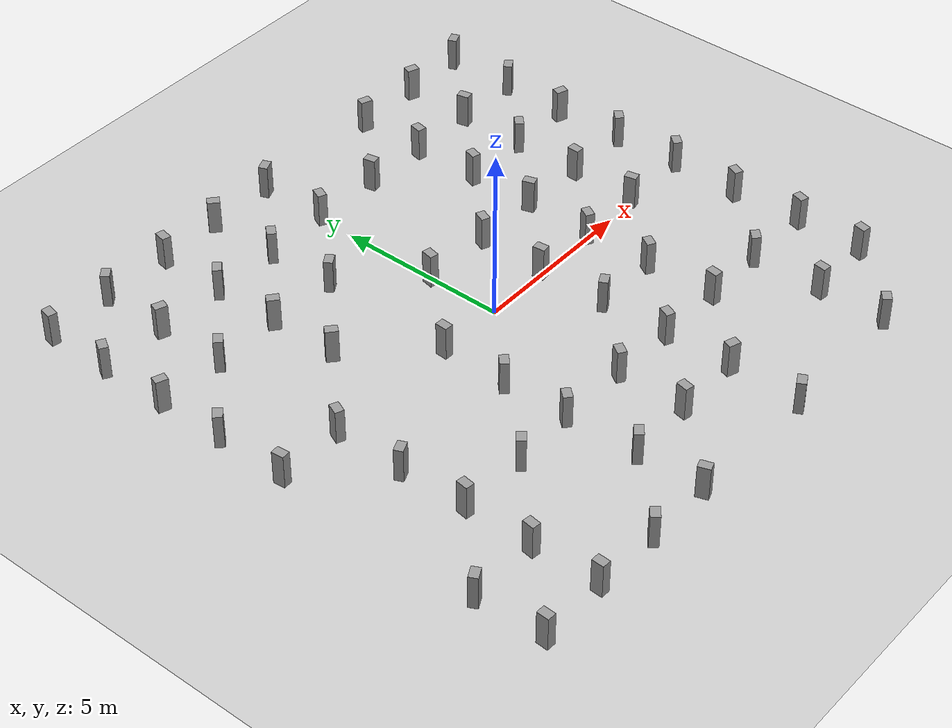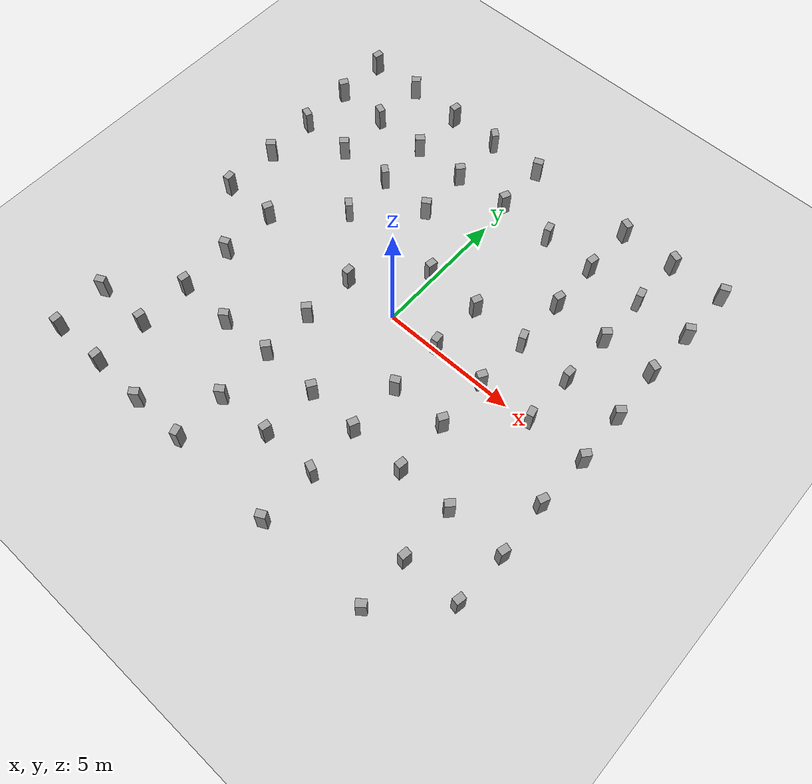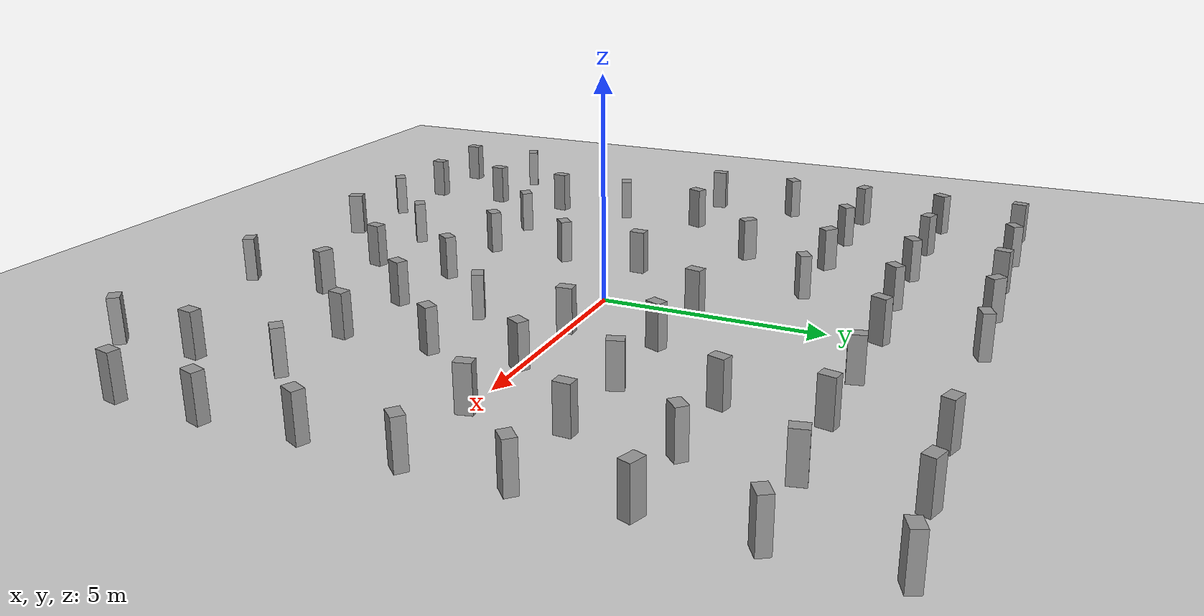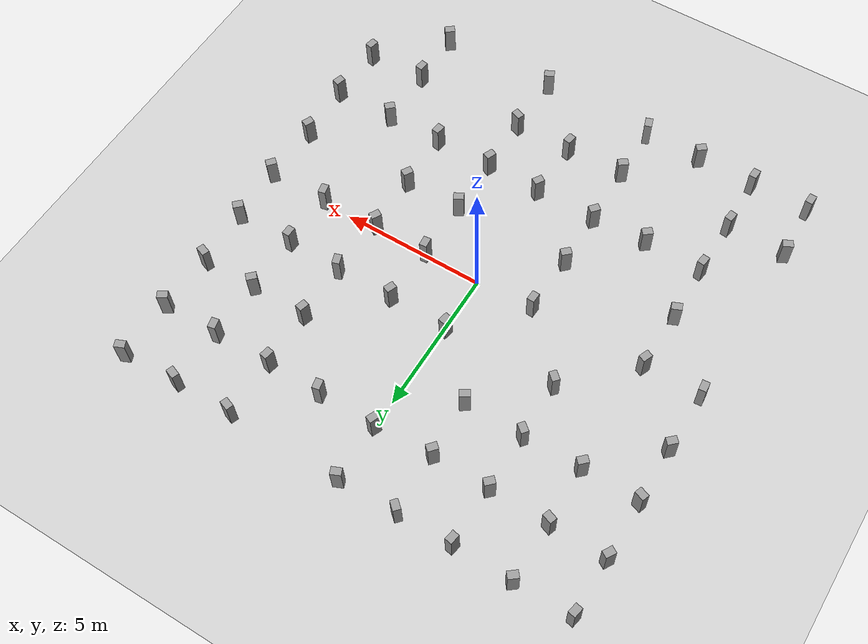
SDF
<sdf version="1.6">
 <world name="default">
  <light name="sun" type="directional">
   <pose>0 0 10 0 -0 0</pose>
   <diffuse>0.8 0.8 0.8 1</diffuse>
   <specular>0.1 0.1 0.1 1</specular>
   <attenuation>
    <range>1000</range>
    <constant>0.9</constant>
    <linear>0.01</linear>
    <quadratic>0.001</quadratic>
   </attenuation>
   <direction>-0.5 0.5 -1</direction>
  </light>
  <model name="ground_plane">
   <static>1</static>
   <link name="link">
    <collision name="collision">
     <geometry><plane><normal>0 0 1</normal><size>100 100</size></plane></geometry>
     <surface><friction><ode><mu>100</mu><mu2>50</mu2></ode></friction></surface>
    </collision>
    <visual name="visual">
     <cast_shadows>0</cast_shadows>
     <geometry><plane><normal>0 0 1</normal><size>100 100</size></plane></geometry>
     <material>
      <script><uri>file://media/materials/scripts/gazebo.material</uri><name>Gazebo/Grey</name></script>
     </material>
    </visual>
   </link>
  </model>
  <gravity>0 0 -9.8</gravity>
  <magnetic_field>6e-06 2.3e-05 -4.2e-05</magnetic_field>
  <atmosphere type="adiabatic"/>
  <physics name="default_physics" default="0" type="ode">
   <max_step_size>0.001</max_step_size>
   <real_time_factor>1</real_time_factor>
   <real_time_update_rate>1000</real_time_update_rate>
  </physics>
  <scene><ambient>0.4 0.4 0.4 1</ambient><background>0.7 0.7 0.7 1</background><shadows>1</shadows></scene>
  <spherical_coordinates>
   <surface_model>EARTH_WGS84</surface_model>
   <latitude_deg>0</latitude_deg>
   <longitude_deg>0</longitude_deg>
   <elevation>0</elevation>
   <heading_deg>0</heading_deg>
  </spherical_coordinates>
  <model name="unit_box_0_clone">
   <pose>-2.05591 -0.03587 0.499999 2e-06 2e-06 -1.61442</pose>
   <link name="link">
    <inertial>
     <mass>1</mass>
     <inertia>
      <ixx>0.166667</ixx>
      <ixy>0</ixy>
      <ixz>0</ixz>
      <iyy>0.166667</iyy>
      <iyz>0</iyz>
      <izz>0.166667</izz>
     </inertia>
    </inertial>
    <collision name="collision"><geometry><box><size>0.350929 0.254556 1</size></box></geometry></collision>
    <visual name="visual">
     <geometry><box><size>0.350929 0.254556 1</size></box></geometry>
     <material>
      <script><name>Gazebo/Grey</name><uri>file://media/materials/scripts/gazebo.material</uri></script>
     </material>
    </visual>
   </link>
  </model>
  <model name="unit_box_0_clone_0">
   <pose>-2.12172 -2.02535 0.499999 1e-06 -3e-06 0.766403</pose>
   <link name="link">
    <inertial>
     <mass>1</mass>
     <inertia>
      <ixx>0.166667</ixx>
      <ixy>0</ixy>
      <ixz>0</ixz>
      <iyy>0.166667</iyy>
      <iyz>0</iyz>
      <izz>0.166667</izz>
     </inertia>
    </inertial>
    <collision name="collision"><geometry><box><size>0.350929 0.254556 1</size></box></geometry></collision>
    <visual name="visual">
     <geometry><box><size>0.350929 0.254556 1</size></box></geometry>
     <material>
      <script><name>Gazebo/Grey</name><uri>file://media/materials/scripts/gazebo.material</uri></script>
     </material>
    </visual>
   </link>
  </model>
  <model name="unit_box_0_clone_2">
   <pose>1.9498 -2.04742 0.499999 3e-06 2e-06 0.477371</pose>
   <link name="link">
    <inertial>
     <mass>1</mass>
     <inertia>
      <ixx>0.166667</ixx>
      <ixy>0</ixy>
      <ixz>0</ixz>
      <iyy>0.166667</iyy>
      <iyz>0</iyz>
      <izz>0.166667</izz>
     </inertia>
    </inertial>
    <collision name="collision"><geometry><box><size>0.350929 0.254556 1</size></box></geometry></collision>
    <visual name="visual">
     <geometry><box><size>0.350929 0.254556 1</size></box></geometry>
     <material>
      <script><name>Gazebo/Grey</name><uri>file://media/materials/scripts/gazebo.material</uri></script>
     </material>
    </visual>
   </link>
  </model>
  <model name="unit_box_0_clone_3">
   <pose>1.94354 0.021052 0.5 1e-06 2e-06 -1.47998</pose>
   <link name="link">
    <inertial>
     <mass>1</mass>
     <inertia>
      <ixx>0.166667</ixx>
      <ixy>0</ixy>
      <ixz>0</ixz>
      <iyy>0.166667</iyy>
      <iyz>0</iyz>
      <izz>0.166667</izz>
     </inertia>
    </inertial>
    <collision name="collision"><geometry><box><size>0.350929 0.254556 1</size></box></geometry></collision>
    <visual name="visual">
     <geometry><box><size>0.350929 0.254556 1</size></box></geometry>
     <material>
      <script><name>Gazebo/Grey</name><uri>file://media/materials/scripts/gazebo.material</uri></script>
     </material>
    </visual>
   </link>
  </model>
  <model name="unit_box_0_clone_4">
   <pose>1.98703 2.02419 0.499999 -3e-06 2e-06 1.17593</pose>
   <link name="link">
    <inertial>
     <mass>1</mass>
     <inertia>
      <ixx>0.166667</ixx>
      <ixy>0</ixy>
      <ixz>0</ixz>
      <iyy>0.166667</iyy>
      <iyz>0</iyz>
      <izz>0.166667</izz>
     </inertia>
    </inertial>
    <collision name="collision"><geometry><box><size>0.350929 0.254556 1</size></box></geometry></collision>
    <visual name="visual">
     <geometry><box><size>0.350929 0.254556 1</size></box></geometry>
     <material>
      <script><name>Gazebo/Grey</name><uri>file://media/materials/scripts/gazebo.material</uri></script>
     </material>
    </visual>
   </link>
  </model>
  <model name="unit_box_0_clone_5">
   <pose>-0.107164 2.07934 0.499999 -1e-06 3e-06 1.37163</pose>
   <link name="link">
    <inertial>
     <mass>1</mass>
     <inertia>
      <ixx>0.166667</ixx>
      <ixy>0</ixy>
      <ixz>0</ixz>
      <iyy>0.166667</iyy>
      <iyz>0</iyz>
      <izz>0.166667</izz>
     </inertia>
    </inertial>
    <collision name="collision"><geometry><box><size>0.350929 0.254556 1</size></box></geometry></collision>
    <visual name="visual">
     <geometry><box><size>0.350929 0.254556 1</size></box></geometry>
     <material>
      <script><name>Gazebo/Grey</name><uri>file://media/materials/scripts/gazebo.material</uri></script>
     </material>
    </visual>
   </link>
  </model>
  <model name="unit_box_0_clone_0_clone_0">
   <pose>3.90799 -0.017551 0.499999 -2e-06 3e-06 1.06267</pose>
   <link name="link">
    <inertial>
     <mass>1</mass>
     <inertia>
      <ixx>0.166667</ixx>
      <ixy>0</ixy>
      <ixz>0</ixz>
      <iyy>0.166667</iyy>
      <iyz>0</iyz>
      <izz>0.166667</izz>
     </inertia>
    </inertial>
    <collision name="collision"><geometry><box><size>0.350929 0.254556 1</size></box></geometry></collision>
    <visual name="visual">
     <geometry><box><size>0.350929 0.254556 1</size></box></geometry>
     <material>
      <script><name>Gazebo/Grey</name><uri>file://media/materials/scripts/gazebo.material</uri></script>
     </material>
    </visual>
   </link>
  </model>
  <model name="unit_box_0_clone_0_clone_1">
   <pose>3.9473 -2.00835 0.5 1e-06 -1e-06 1.0336</pose>
   <link name="link">
    <inertial>
     <mass>1</mass>
     <inertia>
      <ixx>0.166667</ixx>
      <ixy>0</ixy>
      <ixz>0</ixz>
      <iyy>0.166667</iyy>
      <iyz>0</iyz>
      <izz>0.166667</izz>
     </inertia>
    </inertial>
    <collision name="collision"><geometry><box><size>0.350929 0.254556 1</size></box></geometry></collision>
    <visual name="visual">
     <geometry><box><size>0.350929 0.254556 1</size></box></geometry>
     <material>
      <script><name>Gazebo/Grey</name><uri>file://media/materials/scripts/gazebo.material</uri></script>
     </material>
    </visual>
   </link>
  </model>
  <model name="unit_box_0_clone_0_clone_clone_0">
   <pose>-3.99445 2.03442 0.5 1e-06 -2e-06 -0.719649</pose>
   <link name="link">
    <inertial>
     <mass>1</mass>
     <inertia>
      <ixx>0.166667</ixx>
      <ixy>0</ixy>
      <ixz>0</ixz>
      <iyy>0.166667</iyy>
      <iyz>0</iyz>
      <izz>0.166667</izz>
     </inertia>
    </inertial>
    <collision name="collision"><geometry><box><size>0.350929 0.254556 1</size></box></geometry></collision>
    <visual name="visual">
     <geometry><box><size>0.350929 0.254556 1</size></box></geometry>
     <material>
      <script><name>Gazebo/Grey</name><uri>file://media/materials/scripts/gazebo.material</uri></script>
     </material>
    </visual>
   </link>
  </model>
  <model name="unit_box_0_clone_0_clone_clone_1">
   <pose>4.00978 2.0365 0.499999 -2e-06 -2e-06 -1.24413</pose>
   <link name="link">
    <inertial>
     <mass>1</mass>
     <inertia>
      <ixx>0.166667</ixx>
      <ixy>0</ixy>
      <ixz>0</ixz>
      <iyy>0.166667</iyy>
      <iyz>0</iyz>
      <izz>0.166667</izz>
     </inertia>
    </inertial>
    <collision name="collision"><geometry><box><size>0.350929 0.254556 1</size></box></geometry></collision>
    <visual name="visual">
     <geometry><box><size>0.350929 0.254556 1</size></box></geometry>
     <material>
      <script><name>Gazebo/Grey</name><uri>file://media/materials/scripts/gazebo.material</uri></script>
     </material>
    </visual>
   </link>
  </model>
  <model name="unit_box_0_clone_0_clone_clone_2">
   <pose>-4.04009 4.00348 0.499999 -1e-06 3e-06 -0.672931</pose>
   <link name="link">
    <inertial>
     <mass>1</mass>
     <inertia>
      <ixx>0.166667</ixx>
      <ixy>0</ixy>
      <ixz>0</ixz>
      <iyy>0.166667</iyy>
      <iyz>0</iyz>
      <izz>0.166667</izz>
     </inertia>
    </inertial>
    <collision name="collision"><geometry><box><size>0.350929 0.254556 1</size></box></geometry></collision>
    <visual name="visual">
     <geometry><box><size>0.350929 0.254556 1</size></box></geometry>
     <material>
      <script><name>Gazebo/Grey</name><uri>file://media/materials/scripts/gazebo.material</uri></script>
     </material>
    </visual>
   </link>
  </model>
  <model name="unit_box_0_clone_0_clone_clone_3">
   <pose>-1.96683 3.94969 0.5 1e-06 2e-06 0.554753</pose>
   <link name="link">
    <inertial>
     <mass>1</mass>
     <inertia>
      <ixx>0.166667</ixx>
      <ixy>0</ixy>
      <ixz>0</ixz>
      <iyy>0.166667</iyy>
      <iyz>0</iyz>
      <izz>0.166667</izz>
     </inertia>
    </inertial>
    <collision name="collision"><geometry><box><size>0.350929 0.254556 1</size></box></geometry></collision>
    <visual name="visual">
     <geometry><box><size>0.350929 0.254556 1</size></box></geometry>
     <material>
      <script><name>Gazebo/Grey</name><uri>file://media/materials/scripts/gazebo.material</uri></script>
     </material>
    </visual>
   </link>
  </model>
  <model name="unit_box_0_clone_0_clone_clone_6">
   <pose>3.97808 4.00798 0.499999 3e-06 -2e-06 1.2887</pose>
   <link name="link">
    <inertial>
     <mass>1</mass>
     <inertia>
      <ixx>0.166667</ixx>
      <ixy>0</ixy>
      <ixz>0</ixz>
      <iyy>0.166667</iyy>
      <iyz>0</iyz>
      <izz>0.166667</izz>
     </inertia>
    </inertial>
    <collision name="collision"><geometry><box><size>0.350929 0.254556 1</size></box></geometry></collision>
    <visual name="visual">
     <geometry><box><size>0.350929 0.254556 1</size></box></geometry>
     <material>
      <script><name>Gazebo/Grey</name><uri>file://media/materials/scripts/gazebo.material</uri></script>
     </material>
    </visual>
   </link>
  </model>
  <model name="unit_box_0_clone_0_clone_clone_7">
   <pose>-3.99587 -4.06663 0.5 -2e-06 -1e-06 0.674019</pose>
   <link name="link">
    <inertial>
     <mass>1</mass>
     <inertia>
      <ixx>0.166667</ixx>
      <ixy>0</ixy>
      <ixz>0</ixz>
      <iyy>0.166667</iyy>
      <iyz>0</iyz>
      <izz>0.166667</izz>
     </inertia>
    </inertial>
    <collision name="collision"><geometry><box><size>0.350929 0.254556 1</size></box></geometry></collision>
    <visual name="visual">
     <geometry><box><size>0.350929 0.254556 1</size></box></geometry>
     <material>
      <script><name>Gazebo/Grey</name><uri>file://media/materials/scripts/gazebo.material</uri></script>
     </material>
    </visual>
   </link>
  </model>
  <model name="unit_box_0_clone_0_clone_clone_8">
   <pose>-2.09802 -3.96334 0.5 -1e-06 2e-06 0.856121</pose>
   <link name="link">
    <inertial>
     <mass>1</mass>
     <inertia>
      <ixx>0.166667</ixx>
      <ixy>0</ixy>
      <ixz>0</ixz>
      <iyy>0.166667</iyy>
      <iyz>0</iyz>
      <izz>0.166667</izz>
     </inertia>
    </inertial>
    <collision name="collision"><geometry><box><size>0.350929 0.254556 1</size></box></geometry></collision>
    <visual name="visual">
     <geometry><box><size>0.350929 0.254556 1</size></box></geometry>
     <material>
      <script><name>Gazebo/Grey</name><uri>file://media/materials/scripts/gazebo.material</uri></script>
     </material>
    </visual>
   </link>
  </model>
  <model name="unit_box_0_clone_0_clone_clone_9">
   <pose>0.032902 -3.98118 0.499999 2e-06 -3e-06 0.998529</pose>
   <link name="link">
    <inertial>
     <mass>1</mass>
     <inertia>
      <ixx>0.166667</ixx>
      <ixy>0</ixy>
      <ixz>0</ixz>
      <iyy>0.166667</iyy>
      <iyz>0</iyz>
      <izz>0.166667</izz>
     </inertia>
    </inertial>
    <collision name="collision"><geometry><box><size>0.350929 0.254556 1</size></box></geometry></collision>
    <visual name="visual">
     <geometry><box><size>0.350929 0.254556 1</size></box></geometry>
     <material>
      <script><name>Gazebo/Grey</name><uri>file://media/materials/scripts/gazebo.material</uri></script>
     </material>
    </visual>
   </link>
  </model>
  <model name="unit_box_0_clone_0_clone_clone_10">
   <pose>1.95385 -4.04506 0.5 -1e-06 1e-06 1.16011</pose>
   <link name="link">
    <inertial>
     <mass>1</mass>
     <inertia>
      <ixx>0.166667</ixx>
      <ixy>0</ixy>
      <ixz>0</ixz>
      <iyy>0.166667</iyy>
      <iyz>0</iyz>
      <izz>0.166667</izz>
     </inertia>
    </inertial>
    <collision name="collision"><geometry><box><size>0.350929 0.254556 1</size></box></geometry></collision>
    <visual name="visual">
     <geometry><box><size>0.350929 0.254556 1</size></box></geometry>
     <material>
      <script><name>Gazebo/Grey</name><uri>file://media/materials/scripts/gazebo.material</uri></script>
     </material>
    </visual>
   </link>
  </model>
  <model name="unit_box_0_clone_0_clone_clone_11">
   <pose>4.00189 -4.04974 0.499999 -1e-06 3e-06 1.42903</pose>
   <link name="link">
    <inertial>
     <mass>1</mass>
     <inertia>
      <ixx>0.166667</ixx>
      <ixy>0</ixy>
      <ixz>0</ixz>
      <iyy>0.166667</iyy>
      <iyz>0</iyz>
      <izz>0.166667</izz>
     </inertia>
    </inertial>
    <collision name="collision"><geometry><box><size>0.350929 0.254556 1</size></box></geometry></collision>
    <visual name="visual">
     <geometry><box><size>0.350929 0.254556 1</size></box></geometry>
     <material>
      <script><name>Gazebo/Grey</name><uri>file://media/materials/scripts/gazebo.material</uri></script>
     </material>
    </visual>
   </link>
  </model>
  <model name="unit_box_0_clone_0_clone_clone_13">
   <pose>-2.02858 -6.08392 0.499999 3e-06 2e-06 0.65401</pose>
   <link name="link">
    <inertial>
     <mass>1</mass>
     <inertia>
      <ixx>0.166667</ixx>
      <ixy>0</ixy>
      <ixz>0</ixz>
      <iyy>0.166667</iyy>
      <iyz>0</iyz>
      <izz>0.166667</izz>
     </inertia>
    </inertial>
    <collision name="collision"><geometry><box><size>0.350929 0.254556 1</size></box></geometry></collision>
    <visual name="visual">
     <geometry><box><size>0.350929 0.254556 1</size></box></geometry>
     <material>
      <script><name>Gazebo/Grey</name><uri>file://media/materials/scripts/gazebo.material</uri></script>
     </material>
    </visual>
   </link>
  </model>
  <model name="unit_box_0_clone_0_clone_clone_14">
   <pose>-0.025517 -6.0059 0.499999 -1e-06 3e-06 1.37177</pose>
   <link name="link">
    <inertial>
     <mass>1</mass>
     <inertia>
      <ixx>0.166667</ixx>
      <ixy>0</ixy>
      <ixz>0</ixz>
      <iyy>0.166667</iyy>
      <iyz>0</iyz>
      <izz>0.166667</izz>
     </inertia>
    </inertial>
    <collision name="collision"><geometry><box><size>0.350929 0.254556 1</size></box></geometry></collision>
    <visual name="visual">
     <geometry><box><size>0.350929 0.254556 1</size></box></geometry>
     <material>
      <script><name>Gazebo/Grey</name><uri>file://media/materials/scripts/gazebo.material</uri></script>
     </material>
    </visual>
   </link>
  </model>
  <model name="unit_box_0_clone_0_clone_clone_15">
   <pose>2 -6 0.5 -1e-06 2e-06 -0.344023</pose>
   <link name="link">
    <inertial>
     <mass>1</mass>
     <inertia>
      <ixx>0.166667</ixx>
      <ixy>0</ixy>
      <ixz>0</ixz>
      <iyy>0.166667</iyy>
      <iyz>0</iyz>
      <izz>0.166667</izz>
     </inertia>
    </inertial>
    <collision name="collision"><geometry><box><size>0.350929 0.254556 1</size></box></geometry></collision>
    <visual name="visual">
     <geometry><box><size>0.350929 0.254556 1</size></box></geometry>
     <material>
      <script><name>Gazebo/Grey</name><uri>file://media/materials/scripts/gazebo.material</uri></script>
     </material>
    </visual>
   </link>
  </model>
  <model name="unit_box_0_clone_0_clone_clone_11_clone">
   <pose>5.97269 -6.08417 0.5 1e-06 -2e-06 1.42899</pose>
   <link name="link">
    <inertial>
     <mass>1</mass>
     <inertia>
      <ixx>0.166667</ixx>
      <ixy>0</ixy>
      <ixz>0</ixz>
      <iyy>0.166667</iyy>
      <iyz>0</iyz>
      <izz>0.166667</izz>
     </inertia>
    </inertial>
    <collision name="collision"><geometry><box><size>0.350929 0.254556 1</size></box></geometry></collision>
    <visual name="visual">
     <geometry><box><size>0.350929 0.254556 1</size></box></geometry>
     <material>
      <script><name>Gazebo/Grey</name><uri>file://media/materials/scripts/gazebo.material</uri></script>
     </material>
    </visual>
   </link>
  </model>
  <model name="unit_box_0_clone_0_clone_clone_11_clone_0">
   <pose>-6.05663 -6.01449 0.499999 1e-06 -3e-06 1.42906</pose>
   <link name="link">
    <inertial>
     <mass>1</mass>
     <inertia>
      <ixx>0.166667</ixx>
      <ixy>0</ixy>
      <ixz>0</ixz>
      <iyy>0.166667</iyy>
      <iyz>0</iyz>
      <izz>0.166667</izz>
     </inertia>
    </inertial>
    <collision name="collision"><geometry><box><size>0.350929 0.254556 1</size></box></geometry></collision>
    <visual name="visual">
     <geometry><box><size>0.350929 0.254556 1</size></box></geometry>
     <material>
      <script><name>Gazebo/Grey</name><uri>file://media/materials/scripts/gazebo.material</uri></script>
     </material>
    </visual>
   </link>
  </model>
  <model name="unit_box_0_clone_6">
   <pose>5.9535 -4.01117 0.499999 2e-06 -2e-06 0.772519</pose>
   <link name="link">
    <inertial>
     <mass>1</mass>
     <inertia>
      <ixx>0.166667</ixx>
      <ixy>0</ixy>
      <ixz>0</ixz>
      <iyy>0.166667</iyy>
      <iyz>0</iyz>
      <izz>0.166667</izz>
     </inertia>
    </inertial>
    <collision name="collision"><geometry><box><size>0.350929 0.254556 1</size></box></geometry></collision>
    <visual name="visual">
     <geometry><box><size>0.350929 0.254556 1</size></box></geometry>
     <material>
      <script><name>Gazebo/Grey</name><uri>file://media/materials/scripts/gazebo.material</uri></script>
     </material>
    </visual>
   </link>
  </model>
  <model name="unit_box_0_clone_1_clone">
   <pose>5.93099 0.022737 0.5 2e-06 1e-06 -1.35808</pose>
   <link name="link">
    <inertial>
     <mass>1</mass>
     <inertia>
      <ixx>0.166667</ixx>
      <ixy>0</ixy>
      <ixz>0</ixz>
      <iyy>0.166667</iyy>
      <iyz>0</iyz>
      <izz>0.166667</izz>
     </inertia>
    </inertial>
    <collision name="collision"><geometry><box><size>0.350929 0.254556 1</size></box></geometry></collision>
    <visual name="visual">
     <geometry><box><size>0.350929 0.254556 1</size></box></geometry>
     <material>
      <script><name>Gazebo/Grey</name><uri>file://media/materials/scripts/gazebo.material</uri></script>
     </material>
    </visual>
   </link>
  </model>
  <model name="unit_box_0_clone_clone">
   <pose>5.95328 1.96844 0.499999 -2e-06 2e-06 -1.61412</pose>
   <link name="link">
    <inertial>
     <mass>1</mass>
     <inertia>
      <ixx>0.166667</ixx>
      <ixy>0</ixy>
      <ixz>0</ixz>
      <iyy>0.166667</iyy>
      <iyz>0</iyz>
      <izz>0.166667</izz>
     </inertia>
    </inertial>
    <collision name="collision"><geometry><box><size>0.350929 0.254556 1</size></box></geometry></collision>
    <visual name="visual">
     <geometry><box><size>0.350929 0.254556 1</size></box></geometry>
     <material>
      <script><name>Gazebo/Grey</name><uri>file://media/materials/scripts/gazebo.material</uri></script>
     </material>
    </visual>
   </link>
  </model>
  <model name="unit_box_0_clone_7">
   <pose>5.97323 3.98432 0.499999 -1e-06 -3e-06 0.772547</pose>
   <link name="link">
    <inertial>
     <mass>1</mass>
     <inertia>
      <ixx>0.166667</ixx>
      <ixy>0</ixy>
      <ixz>0</ixz>
      <iyy>0.166667</iyy>
      <iyz>0</iyz>
      <izz>0.166667</izz>
     </inertia>
    </inertial>
    <collision name="collision"><geometry><box><size>0.350929 0.254556 1</size></box></geometry></collision>
    <visual name="visual">
     <geometry><box><size>0.350929 0.254556 1</size></box></geometry>
     <material>
      <script><name>Gazebo/Grey</name><uri>file://media/materials/scripts/gazebo.material</uri></script>
     </material>
    </visual>
   </link>
  </model>
  <model name="unit_box_0_clone_1_clone_0">
   <pose>5.97038 5.96817 0.499999 1e-06 3e-06 -1.35802</pose>
   <link name="link">
    <inertial>
     <mass>1</mass>
     <inertia>
      <ixx>0.166667</ixx>
      <ixy>0</ixy>
      <ixz>0</ixz>
      <iyy>0.166667</iyy>
      <iyz>0</iyz>
      <izz>0.166667</izz>
     </inertia>
    </inertial>
    <collision name="collision"><geometry><box><size>0.350929 0.254556 1</size></box></geometry></collision>
    <visual name="visual">
     <geometry><box><size>0.350929 0.254556 1</size></box></geometry>
     <material>
      <script><name>Gazebo/Grey</name><uri>file://media/materials/scripts/gazebo.material</uri></script>
     </material>
    </visual>
   </link>
  </model>
  <model name="unit_box_0_clone_5_clone">
   <pose>3.93752 5.94743 0.499999 2e-06 -2e-06 1.37155</pose>
   <link name="link">
    <inertial>
     <mass>1</mass>
     <inertia>
      <ixx>0.166667</ixx>
      <ixy>0</ixy>
      <ixz>0</ixz>
      <iyy>0.166667</iyy>
      <iyz>0</iyz>
      <izz>0.166667</izz>
     </inertia>
    </inertial>
    <collision name="collision"><geometry><box><size>0.350929 0.254556 1</size></box></geometry></collision>
    <visual name="visual">
     <geometry><box><size>0.350929 0.254556 1</size></box></geometry>
     <material>
      <script><name>Gazebo/Grey</name><uri>file://media/materials/scripts/gazebo.material</uri></script>
     </material>
    </visual>
   </link>
  </model>
  <model name="unit_box_0_clone_1_clone_1">
   <pose>2 6 0.499999 2e-06 3e-06 -1.35811</pose>
   <link name="link">
    <inertial>
     <mass>1</mass>
     <inertia>
      <ixx>0.166667</ixx>
      <ixy>0</ixy>
      <ixz>0</ixz>
      <iyy>0.166667</iyy>
      <iyz>0</iyz>
      <izz>0.166667</izz>
     </inertia>
    </inertial>
    <collision name="collision"><geometry><box><size>0.350929 0.254556 1</size></box></geometry></collision>
    <visual name="visual">
     <geometry><box><size>0.350929 0.254556 1</size></box></geometry>
     <material>
      <script><name>Gazebo/Grey</name><uri>file://media/materials/scripts/gazebo.material</uri></script>
     </material>
    </visual>
   </link>
  </model>
  <model name="unit_box_0_clone_0_clone_clone_10_clone">
   <pose>-0.034355 6.04421 0.5 -1e-06 2e-06 1.16011</pose>
   <link name="link">
    <inertial>
     <mass>1</mass>
     <inertia>
      <ixx>0.166667</ixx>
      <ixy>0</ixy>
      <ixz>0</ixz>
      <iyy>0.166667</iyy>
      <iyz>0</iyz>
      <izz>0.166667</izz>
     </inertia>
    </inertial>
    <collision name="collision"><geometry><box><size>0.350929 0.254556 1</size></box></geometry></collision>
    <visual name="visual">
     <geometry><box><size>0.350929 0.254556 1</size></box></geometry>
     <material>
      <script><name>Gazebo/Grey</name><uri>file://media/materials/scripts/gazebo.material</uri></script>
     </material>
    </visual>
   </link>
  </model>
  <model name="unit_box_0_clone_0_clone_clone_8_clone_0">
   <pose>-2.0601 5.93381 0.499999 3e-06 -2e-06 0.856152</pose>
   <link name="link">
    <inertial>
     <mass>1</mass>
     <inertia>
      <ixx>0.166667</ixx>
      <ixy>0</ixy>
      <ixz>0</ixz>
      <iyy>0.166667</iyy>
      <iyz>0</iyz>
      <izz>0.166667</izz>
     </inertia>
    </inertial>
    <collision name="collision"><geometry><box><size>0.350929 0.254556 1</size></box></geometry></collision>
    <visual name="visual">
     <geometry><box><size>0.350929 0.254556 1</size></box></geometry>
     <material>
      <script><name>Gazebo/Grey</name><uri>file://media/materials/scripts/gazebo.material</uri></script>
     </material>
    </visual>
   </link>
  </model>
  <model name="unit_box_0_clone_0_clone_2">
   <pose>-4.0507 5.96912 0.5 0 -1e-06 0.766404</pose>
   <link name="link">
    <inertial>
     <mass>1</mass>
     <inertia>
      <ixx>0.166667</ixx>
      <ixy>0</ixy>
      <ixz>0</ixz>
      <iyy>0.166667</iyy>
      <iyz>0</iyz>
      <izz>0.166667</izz>
     </inertia>
    </inertial>
    <collision name="collision"><geometry><box><size>0.350929 0.254556 1</size></box></geometry></collision>
    <visual name="visual">
     <geometry><box><size>0.350929 0.254556 1</size></box></geometry>
     <material>
      <script><name>Gazebo/Grey</name><uri>file://media/materials/scripts/gazebo.material</uri></script>
     </material>
    </visual>
   </link>
  </model>
  <model name="unit_box_0_clone_0_clone_clone_15_clone">
   <pose>-6.09579 6.00418 0.499999 -1e-06 3e-06 -0.343954</pose>
   <link name="link">
    <inertial>
     <mass>1</mass>
     <inertia>
      <ixx>0.166667</ixx>
      <ixy>0</ixy>
      <ixz>0</ixz>
      <iyy>0.166667</iyy>
      <iyz>0</iyz>
      <izz>0.166667</izz>
     </inertia>
    </inertial>
    <collision name="collision"><geometry><box><size>0.350929 0.254556 1</size></box></geometry></collision>
    <visual name="visual">
     <geometry><box><size>0.350929 0.254556 1</size></box></geometry>
     <material>
      <script><name>Gazebo/Grey</name><uri>file://media/materials/scripts/gazebo.material</uri></script>
     </material>
    </visual>
   </link>
  </model>
  <model name="unit_box_0_clone_8">
   <pose>-6.05766 3.97861 0.5 -0 2e-06 0.772544</pose>
   <link name="link">
    <inertial>
     <mass>1</mass>
     <inertia>
      <ixx>0.166667</ixx>
      <ixy>0</ixy>
      <ixz>0</ixz>
      <iyy>0.166667</iyy>
      <iyz>0</iyz>
      <izz>0.166667</izz>
     </inertia>
    </inertial>
    <collision name="collision"><geometry><box><size>0.350929 0.254556 1</size></box></geometry></collision>
    <visual name="visual">
     <geometry><box><size>0.350929 0.254556 1</size></box></geometry>
     <material>
      <script><name>Gazebo/Grey</name><uri>file://media/materials/scripts/gazebo.material</uri></script>
     </material>
    </visual>
   </link>
  </model>
  <model name="unit_box_0_clone_4_clone">
   <pose>-6.05266 -0.012391 0.499999 -2e-06 2e-06 1.17593</pose>
   <link name="link">
    <inertial>
     <mass>1</mass>
     <inertia>
      <ixx>0.166667</ixx>
      <ixy>0</ixy>
      <ixz>0</ixz>
      <iyy>0.166667</iyy>
      <iyz>0</iyz>
      <izz>0.166667</izz>
     </inertia>
    </inertial>
    <collision name="collision"><geometry><box><size>0.350929 0.254556 1</size></box></geometry></collision>
    <visual name="visual">
     <geometry><box><size>0.350929 0.254556 1</size></box></geometry>
     <material>
      <script><name>Gazebo/Grey</name><uri>file://media/materials/scripts/gazebo.material</uri></script>
     </material>
    </visual>
   </link>
  </model>
  <model name="unit_box_0_clone_0_clone_clone_5_clone">
   <pose>-6.08131 -2.07249 0.5 -1e-06 -2e-06 0.402056</pose>
   <link name="link">
    <inertial>
     <mass>1</mass>
     <inertia>
      <ixx>0.166667</ixx>
      <ixy>0</ixy>
      <ixz>0</ixz>
      <iyy>0.166667</iyy>
      <iyz>0</iyz>
      <izz>0.166667</izz>
     </inertia>
    </inertial>
    <collision name="collision"><geometry><box><size>0.350929 0.254556 1</size></box></geometry></collision>
    <visual name="visual">
     <geometry><box><size>0.350929 0.254556 1</size></box></geometry>
     <material>
      <script><name>Gazebo/Grey</name><uri>file://media/materials/scripts/gazebo.material</uri></script>
     </material>
    </visual>
   </link>
  </model>
  <model name="unit_box_0_clone_0_clone_clone_11_clone_1">
   <pose>-6.03872 -4.03197 0.5 1e-06 -1e-06 1.42917</pose>
   <link name="link">
    <inertial>
     <mass>1</mass>
     <inertia>
      <ixx>0.166667</ixx>
      <ixy>0</ixy>
      <ixz>0</ixz>
      <iyy>0.166667</iyy>
      <iyz>0</iyz>
      <izz>0.166667</izz>
     </inertia>
    </inertial>
    <collision name="collision"><geometry><box><size>0.350929 0.254556 1</size></box></geometry></collision>
    <visual name="visual">
     <geometry><box><size>0.350929 0.254556 1</size></box></geometry>
     <material>
      <script><name>Gazebo/Grey</name><uri>file://media/materials/scripts/gazebo.material</uri></script>
     </material>
    </visual>
   </link>
  </model>
  <model name="unit_box_0_clone_clone_0">
   <pose>-8.02031 -7.97952 0.5 0 0 -1.61444</pose>
   <link name="link">
    <inertial>
     <mass>1</mass>
     <inertia>
      <ixx>0.166667</ixx>
      <ixy>0</ixy>
      <ixz>0</ixz>
      <iyy>0.166667</iyy>
      <iyz>0</iyz>
      <izz>0.166667</izz>
     </inertia>
    </inertial>
    <collision name="collision"><geometry><box><size>0.350929 0.254556 1</size></box></geometry></collision>
    <visual name="visual">
     <geometry><box><size>0.350929 0.254556 1</size></box></geometry>
     <material>
      <script><name>Gazebo/Grey</name><uri>file://media/materials/scripts/gazebo.material</uri></script>
     </material>
    </visual>
   </link>
  </model>
  <model name="unit_box_0_clone_2_clone">
   <pose>-8.0886 -6.0066 0.5 -2e-06 -1e-06 0.477424</pose>
   <link name="link">
    <inertial>
     <mass>1</mass>
     <inertia>
      <ixx>0.166667</ixx>
      <ixy>0</ixy>
      <ixz>0</ixz>
      <iyy>0.166667</iyy>
      <iyz>0</iyz>
      <izz>0.166667</izz>
     </inertia>
    </inertial>
    <collision name="collision"><geometry><box><size>0.350929 0.254556 1</size></box></geometry></collision>
    <visual name="visual">
     <geometry><box><size>0.350929 0.254556 1</size></box></geometry>
     <material>
      <script><name>Gazebo/Grey</name><uri>file://media/materials/scripts/gazebo.material</uri></script>
     </material>
    </visual>
   </link>
  </model>
  <model name="unit_box_0_clone_3_clone">
   <pose>-8.04135 -0.027247 0.499999 -1e-06 -3e-06 -1.48021</pose>
   <link name="link">
    <inertial>
     <mass>1</mass>
     <inertia>
      <ixx>0.166667</ixx>
      <ixy>0</ixy>
      <ixz>0</ixz>
      <iyy>0.166667</iyy>
      <iyz>0</iyz>
      <izz>0.166667</izz>
     </inertia>
    </inertial>
    <collision name="collision"><geometry><box><size>0.350929 0.254556 1</size></box></geometry></collision>
    <visual name="visual">
     <geometry><box><size>0.350929 0.254556 1</size></box></geometry>
     <material>
      <script><name>Gazebo/Grey</name><uri>file://media/materials/scripts/gazebo.material</uri></script>
     </material>
    </visual>
   </link>
  </model>
  <model name="unit_box_0_clone_0_clone_3">
   <pose>-8.01258 2.0706 0.499999 1e-06 -3e-06 0.766472</pose>
   <link name="link">
    <inertial>
     <mass>1</mass>
     <inertia>
      <ixx>0.166667</ixx>
      <ixy>0</ixy>
      <ixz>0</ixz>
      <iyy>0.166667</iyy>
      <iyz>0</iyz>
      <izz>0.166667</izz>
     </inertia>
    </inertial>
    <collision name="collision"><geometry><box><size>0.350929 0.254556 1</size></box></geometry></collision>
    <visual name="visual">
     <geometry><box><size>0.350929 0.254556 1</size></box></geometry>
     <material>
      <script><name>Gazebo/Grey</name><uri>file://media/materials/scripts/gazebo.material</uri></script>
     </material>
    </visual>
   </link>
  </model>
  <model name="unit_box_0_clone_0_clone_clone_17">
   <pose>-8.02954 4.01791 0.499999 3e-06 -2e-06 -0.344084</pose>
   <link name="link">
    <inertial>
     <mass>1</mass>
     <inertia>
      <ixx>0.166667</ixx>
      <ixy>0</ixy>
      <ixz>0</ixz>
      <iyy>0.166667</iyy>
      <iyz>0</iyz>
      <izz>0.166667</izz>
     </inertia>
    </inertial>
    <collision name="collision"><geometry><box><size>0.350929 0.254556 1</size></box></geometry></collision>
    <visual name="visual">
     <geometry><box><size>0.350929 0.254556 1</size></box></geometry>
     <material>
      <script><name>Gazebo/Grey</name><uri>file://media/materials/scripts/gazebo.material</uri></script>
     </material>
    </visual>
   </link>
  </model>
  <model name="unit_box_0_clone_0_clone_1_clone">
   <pose>-8.04903 6.0384 0.499999 -2e-06 2e-06 1.03366</pose>
   <link name="link">
    <inertial>
     <mass>1</mass>
     <inertia>
      <ixx>0.166667</ixx>
      <ixy>0</ixy>
      <ixz>0</ixz>
      <iyy>0.166667</iyy>
      <iyz>0</iyz>
      <izz>0.166667</izz>
     </inertia>
    </inertial>
    <collision name="collision"><geometry><box><size>0.350929 0.254556 1</size></box></geometry></collision>
    <visual name="visual">
     <geometry><box><size>0.350929 0.254556 1</size></box></geometry>
     <material>
      <script><name>Gazebo/Grey</name><uri>file://media/materials/scripts/gazebo.material</uri></script>
     </material>
    </visual>
   </link>
  </model>
  <model name="unit_box_0_clone_0_clone_clone_14_clone">
   <pose>-8.04004 7.98435 0.499999 -3e-06 2e-06 1.3718</pose>
   <link name="link">
    <inertial>
     <mass>1</mass>
     <inertia>
      <ixx>0.166667</ixx>
      <ixy>0</ixy>
      <ixz>0</ixz>
      <iyy>0.166667</iyy>
      <iyz>0</iyz>
      <izz>0.166667</izz>
     </inertia>
    </inertial>
    <collision name="collision"><geometry><box><size>0.350929 0.254556 1</size></box></geometry></collision>
    <visual name="visual">
     <geometry><box><size>0.350929 0.254556 1</size></box></geometry>
     <material>
      <script><name>Gazebo/Grey</name><uri>file://media/materials/scripts/gazebo.material</uri></script>
     </material>
    </visual>
   </link>
  </model>
  <model name="unit_box_0_clone_0_clone_clone_7_clone">
   <pose>-6.05556 8.01606 0.499999 1e-06 3e-06 0.673998</pose>
   <link name="link">
    <inertial>
     <mass>1</mass>
     <inertia>
      <ixx>0.166667</ixx>
      <ixy>0</ixy>
      <ixz>0</ixz>
      <iyy>0.166667</iyy>
      <iyz>0</iyz>
      <izz>0.166667</izz>
     </inertia>
    </inertial>
    <collision name="collision"><geometry><box><size>0.350929 0.254556 1</size></box></geometry></collision>
    <visual name="visual">
     <geometry><box><size>0.350929 0.254556 1</size></box></geometry>
     <material>
      <script><name>Gazebo/Grey</name><uri>file://media/materials/scripts/gazebo.material</uri></script>
     </material>
    </visual>
   </link>
  </model>
  <model name="unit_box_0_clone_5_clone_0">
   <pose>-4.0227 7.97562 0.5 -2e-06 1e-06 1.37152</pose>
   <link name="link">
    <inertial>
     <mass>1</mass>
     <inertia>
      <ixx>0.166667</ixx>
      <ixy>0</ixy>
      <ixz>0</ixz>
      <iyy>0.166667</iyy>
      <iyz>0</iyz>
      <izz>0.166667</izz>
     </inertia>
    </inertial>
    <collision name="collision"><geometry><box><size>0.350929 0.254556 1</size></box></geometry></collision>
    <visual name="visual">
     <geometry><box><size>0.350929 0.254556 1</size></box></geometry>
     <material>
      <script><name>Gazebo/Grey</name><uri>file://media/materials/scripts/gazebo.material</uri></script>
     </material>
    </visual>
   </link>
  </model>
  <model name="unit_box_0_clone_0_clone_clone_0_clone">
   <pose>-2.1188 8.00665 0.499999 1e-06 -3e-06 -0.719574</pose>
   <link name="link">
    <inertial>
     <mass>1</mass>
     <inertia>
      <ixx>0.166667</ixx>
      <ixy>0</ixy>
      <ixz>0</ixz>
      <iyy>0.166667</iyy>
      <iyz>0</iyz>
      <izz>0.166667</izz>
     </inertia>
    </inertial>
    <collision name="collision"><geometry><box><size>0.350929 0.254556 1</size></box></geometry></collision>
    <visual name="visual">
     <geometry><box><size>0.350929 0.254556 1</size></box></geometry>
     <material>
      <script><name>Gazebo/Grey</name><uri>file://media/materials/scripts/gazebo.material</uri></script>
     </material>
    </visual>
   </link>
  </model>
  <model name="unit_box_0_clone_0_clone_clone_5_clone_clone">
   <pose>-0.07356 8.03968 0.5 1e-06 2e-06 0.402099</pose>
   <link name="link">
    <inertial>
     <mass>1</mass>
     <inertia>
      <ixx>0.166667</ixx>
      <ixy>0</ixy>
      <ixz>0</ixz>
      <iyy>0.166667</iyy>
      <iyz>0</iyz>
      <izz>0.166667</izz>
     </inertia>
    </inertial>
    <collision name="collision"><geometry><box><size>0.350929 0.254556 1</size></box></geometry></collision>
    <visual name="visual">
     <geometry><box><size>0.350929 0.254556 1</size></box></geometry>
     <material>
      <script><name>Gazebo/Grey</name><uri>file://media/materials/scripts/gazebo.material</uri></script>
     </material>
    </visual>
   </link>
  </model>
  <model name="unit_box_0_clone_0_clone_clone_18">
   <pose>3.95488 7.96357 0.499999 2e-06 -2e-06 -0.344029</pose>
   <link name="link">
    <inertial>
     <mass>1</mass>
     <inertia>
      <ixx>0.166667</ixx>
      <ixy>0</ixy>
      <ixz>0</ixz>
      <iyy>0.166667</iyy>
      <iyz>0</iyz>
      <izz>0.166667</izz>
     </inertia>
    </inertial>
    <collision name="collision"><geometry><box><size>0.350929 0.254556 1</size></box></geometry></collision>
    <visual name="visual">
     <geometry><box><size>0.350929 0.254556 1</size></box></geometry>
     <material>
      <script><name>Gazebo/Grey</name><uri>file://media/materials/scripts/gazebo.material</uri></script>
     </material>
    </visual>
   </link>
  </model>
  <model name="unit_box_0_clone_0_clone_clone_4_clone_0">
   <pose>5.99782 7.97549 0.5 -2e-06 1e-06 -0.343986</pose>
   <link name="link">
    <inertial>
     <mass>1</mass>
     <inertia>
      <ixx>0.166667</ixx>
      <ixy>0</ixy>
      <ixz>0</ixz>
      <iyy>0.166667</iyy>
      <iyz>0</iyz>
      <izz>0.166667</izz>
     </inertia>
    </inertial>
    <collision name="collision"><geometry><box><size>0.350929 0.254556 1</size></box></geometry></collision>
    <visual name="visual">
     <geometry><box><size>0.350929 0.254556 1</size></box></geometry>
     <material>
      <script><name>Gazebo/Grey</name><uri>file://media/materials/scripts/gazebo.material</uri></script>
     </material>
    </visual>
   </link>
  </model>
  <model name="unit_box_0_clone_0_clone_clone_5_clone_clone_0">
   <pose>7.98714 8.04657 0.5 1e-06 2e-06 0.401961</pose>
   <link name="link">
    <inertial>
     <mass>1</mass>
     <inertia>
      <ixx>0.166667</ixx>
      <ixy>0</ixy>
      <ixz>0</ixz>
      <iyy>0.166667</iyy>
      <iyz>0</iyz>
      <izz>0.166667</izz>
     </inertia>
    </inertial>
    <collision name="collision"><geometry><box><size>0.350929 0.254556 1</size></box></geometry></collision>
    <visual name="visual">
     <geometry><box><size>0.350929 0.254556 1</size></box></geometry>
     <material>
      <script><name>Gazebo/Grey</name><uri>file://media/materials/scripts/gazebo.material</uri></script>
     </material>
    </visual>
   </link>
  </model>
  <model name="unit_box_0_clone_0_clone_clone_3_clone">
   <pose>7.966 5.9773 0.499999 2e-06 3e-06 0.554895</pose>
   <link name="link">
    <inertial>
     <mass>1</mass>
     <inertia>
      <ixx>0.166667</ixx>
      <ixy>0</ixy>
      <ixz>0</ixz>
      <iyy>0.166667</iyy>
      <iyz>0</iyz>
      <izz>0.166667</izz>
     </inertia>
    </inertial>
    <collision name="collision"><geometry><box><size>0.350929 0.254556 1</size></box></geometry></collision>
    <visual name="visual">
     <geometry><box><size>0.350929 0.254556 1</size></box></geometry>
     <material>
      <script><name>Gazebo/Grey</name><uri>file://media/materials/scripts/gazebo.material</uri></script>
     </material>
    </visual>
   </link>
  </model>
  <model name="unit_box_0_clone_0_clone_clone_4_clone_1">
   <pose>7.87955 3.99891 0.499999 -2e-06 3e-06 -0.344002</pose>
   <link name="link">
    <inertial>
     <mass>1</mass>
     <inertia>
      <ixx>0.166667</ixx>
      <ixy>0</ixy>
      <ixz>0</ixz>
      <iyy>0.166667</iyy>
      <iyz>0</iyz>
      <izz>0.166667</izz>
     </inertia>
    </inertial>
    <collision name="collision"><geometry><box><size>0.350929 0.254556 1</size></box></geometry></collision>
    <visual name="visual">
     <geometry><box><size>0.350929 0.254556 1</size></box></geometry>
     <material>
      <script><name>Gazebo/Grey</name><uri>file://media/materials/scripts/gazebo.material</uri></script>
     </material>
    </visual>
   </link>
  </model>
  <model name="unit_box_0_clone_9">
   <pose>7.9798 1.99443 0.5 1e-06 -2e-06 0.772494</pose>
   <link name="link">
    <inertial>
     <mass>1</mass>
     <inertia>
      <ixx>0.166667</ixx>
      <ixy>0</ixy>
      <ixz>0</ixz>
      <iyy>0.166667</iyy>
      <iyz>0</iyz>
      <izz>0.166667</izz>
     </inertia>
    </inertial>
    <collision name="collision"><geometry><box><size>0.350929 0.254556 1</size></box></geometry></collision>
    <visual name="visual">
     <geometry><box><size>0.350929 0.254556 1</size></box></geometry>
     <material>
      <script><name>Gazebo/Grey</name><uri>file://media/materials/scripts/gazebo.material</uri></script>
     </material>
    </visual>
   </link>
  </model>
  <model name="unit_box_0_clone_0_clone_clone_8_clone_2">
   <pose>8.04719 0.051568 0.499999 -2e-06 -3e-06 0.856098</pose>
   <link name="link">
    <inertial>
     <mass>1</mass>
     <inertia>
      <ixx>0.166667</ixx>
      <ixy>0</ixy>
      <ixz>0</ixz>
      <iyy>0.166667</iyy>
      <iyz>0</iyz>
      <izz>0.166667</izz>
     </inertia>
    </inertial>
    <collision name="collision"><geometry><box><size>0.350929 0.254556 1</size></box></geometry></collision>
    <visual name="visual">
     <geometry><box><size>0.350929 0.254556 1</size></box></geometry>
     <material>
      <script><name>Gazebo/Grey</name><uri>file://media/materials/scripts/gazebo.material</uri></script>
     </material>
    </visual>
   </link>
  </model>
  <model name="unit_box_0_clone_0_clone_clone_10_clone_clone">
   <pose>7.96284 -1.99279 0.5 1e-06 -2e-06 1.16004</pose>
   <link name="link">
    <inertial>
     <mass>1</mass>
     <inertia>
      <ixx>0.166667</ixx>
      <ixy>0</ixy>
      <ixz>0</ixz>
      <iyy>0.166667</iyy>
      <iyz>0</iyz>
      <izz>0.166667</izz>
     </inertia>
    </inertial>
    <collision name="collision"><geometry><box><size>0.350929 0.254556 1</size></box></geometry></collision>
    <visual name="visual">
     <geometry><box><size>0.350929 0.254556 1</size></box></geometry>
     <material>
      <script><name>Gazebo/Grey</name><uri>file://media/materials/scripts/gazebo.material</uri></script>
     </material>
    </visual>
   </link>
  </model>
  <model name="unit_box_0_clone_0_clone_clone_6_clone">
   <pose>8.07355 -4.02395 0.5 -0 -2e-06 1.28863</pose>
   <link name="link">
    <inertial>
     <mass>1</mass>
     <inertia>
      <ixx>0.166667</ixx>
      <ixy>0</ixy>
      <ixz>0</ixz>
      <iyy>0.166667</iyy>
      <iyz>0</iyz>
      <izz>0.166667</izz>
     </inertia>
    </inertial>
    <collision name="collision"><geometry><box><size>0.350929 0.254556 1</size></box></geometry></collision>
    <visual name="visual">
     <geometry><box><size>0.350929 0.254556 1</size></box></geometry>
     <material>
      <script><name>Gazebo/Grey</name><uri>file://media/materials/scripts/gazebo.material</uri></script>
     </material>
    </visual>
   </link>
  </model>
  <model name="unit_box_0_clone_5_clone_1">
   <pose>8.01703 -6.00424 0.5 -2e-06 1e-06 1.3716</pose>
   <link name="link">
    <inertial>
     <mass>1</mass>
     <inertia>
      <ixx>0.166667</ixx>
      <ixy>0</ixy>
      <ixz>0</ixz>
      <iyy>0.166667</iyy>
      <iyz>0</iyz>
      <izz>0.166667</izz>
     </inertia>
    </inertial>
    <collision name="collision"><geometry><box><size>0.350929 0.254556 1</size></box></geometry></collision>
    <visual name="visual">
     <geometry><box><size>0.350929 0.254556 1</size></box></geometry>
     <material>
      <script><name>Gazebo/Grey</name><uri>file://media/materials/scripts/gazebo.material</uri></script>
     </material>
    </visual>
   </link>
  </model>
  <model name="unit_box_0_clone_0_clone_clone_7_clone_0">
   <pose>6 -8 0.5 -0 -2e-06 0.673978</pose>
   <link name="link">
    <inertial>
     <mass>1</mass>
     <inertia>
      <ixx>0.166667</ixx>
      <ixy>0</ixy>
      <ixz>0</ixz>
      <iyy>0.166667</iyy>
      <iyz>0</iyz>
      <izz>0.166667</izz>
     </inertia>
    </inertial>
    <collision name="collision"><geometry><box><size>0.350929 0.254556 1</size></box></geometry></collision>
    <visual name="visual">
     <geometry><box><size>0.350929 0.254556 1</size></box></geometry>
     <material>
      <script><name>Gazebo/Grey</name><uri>file://media/materials/scripts/gazebo.material</uri></script>
     </material>
    </visual>
   </link>
  </model>
  <model name="unit_box_0_clone_0_clone_clone_1_clone">
   <pose>-2 -8 0.5 -2e-06 -1e-06 -1.24412</pose>
   <link name="link">
    <inertial>
     <mass>1</mass>
     <inertia>
      <ixx>0.166667</ixx>
      <ixy>0</ixy>
      <ixz>0</ixz>
      <iyy>0.166667</iyy>
      <iyz>0</iyz>
      <izz>0.166667</izz>
     </inertia>
    </inertial>
    <collision name="collision"><geometry><box><size>0.350929 0.254556 1</size></box></geometry></collision>
    <visual name="visual">
     <geometry><box><size>0.350929 0.254556 1</size></box></geometry>
     <material>
      <script><name>Gazebo/Grey</name><uri>file://media/materials/scripts/gazebo.material</uri></script>
     </material>
    </visual>
   </link>
  </model>
  <model name="unit_box_0_clone_0_clone_clone_7_clone_1">
   <pose>-4 -8 0.499999 2e-06 2e-06 0.673901</pose>
   <link name="link">
    <inertial>
     <mass>1</mass>
     <inertia>
      <ixx>0.166667</ixx>
      <ixy>0</ixy>
      <ixz>0</ixz>
      <iyy>0.166667</iyy>
      <iyz>0</iyz>
      <izz>0.166667</izz>
     </inertia>
    </inertial>
    <collision name="collision"><geometry><box><size>0.350929 0.254556 1</size></box></geometry></collision>
    <visual name="visual">
     <geometry><box><size>0.350929 0.254556 1</size></box></geometry>
     <material>
      <script><name>Gazebo/Grey</name><uri>file://media/materials/scripts/gazebo.material</uri></script>
     </material>
    </visual>
   </link>
  </model>
  <model name="unit_box_0_clone_clone_clone">
   <pose>-6.00229 -7.95876 0.5 0 2e-06 -1.61401</pose>
   <link name="link">
    <inertial>
     <mass>1</mass>
     <inertia>
      <ixx>0.166667</ixx>
      <ixy>0</ixy>
      <ixz>0</ixz>
      <iyy>0.166667</iyy>
      <iyz>0</iyz>
      <izz>0.166667</izz>
     </inertia>
    </inertial>
    <collision name="collision"><geometry><box><size>0.350929 0.254556 1</size></box></geometry></collision>
    <visual name="visual">
     <geometry><box><size>0.350929 0.254556 1</size></box></geometry>
     <material>
      <script><name>Gazebo/Grey</name><uri>file://media/materials/scripts/gazebo.material</uri></script>
     </material>
    </visual>
   </link>
  </model>
  <model name="unit_box_0_clone_2_clone_0">
   <pose>1.95493 -8.09468 0.499999 -1e-06 -3e-06 0.477452</pose>
   <link name="link">
    <inertial>
     <mass>1</mass>
     <inertia>
      <ixx>0.166667</ixx>
      <ixy>0</ixy>
      <ixz>0</ixz>
      <iyy>0.166667</iyy>
      <iyz>0</iyz>
      <izz>0.166667</izz>
     </inertia>
    </inertial>
    <collision name="collision"><geometry><box><size>0.350929 0.254556 1</size></box></geometry></collision>
    <visual name="visual">
     <geometry><box><size>0.350929 0.254556 1</size></box></geometry>
     <material>
      <script><name>Gazebo/Grey</name><uri>file://media/materials/scripts/gazebo.material</uri></script>
     </material>
    </visual>
   </link>
  </model>
 </world>
</sdf>
